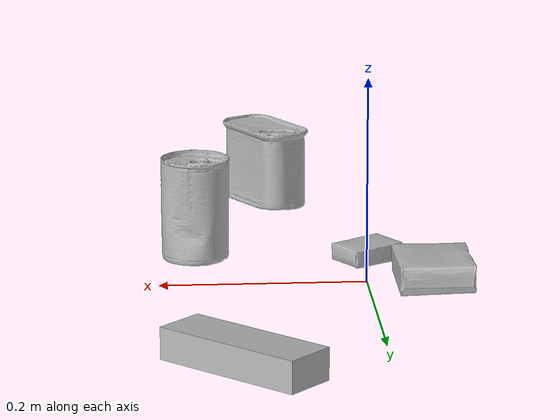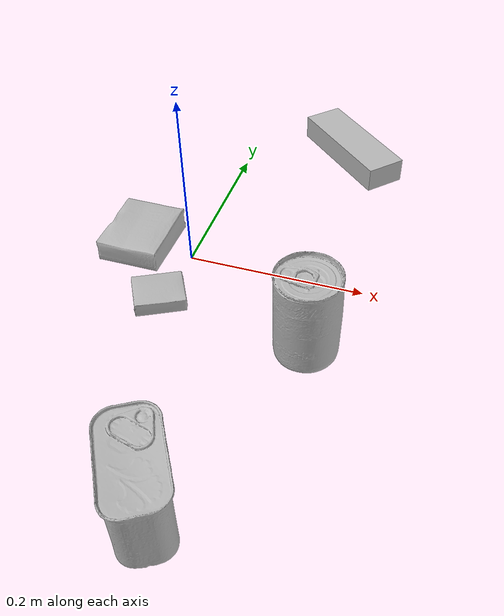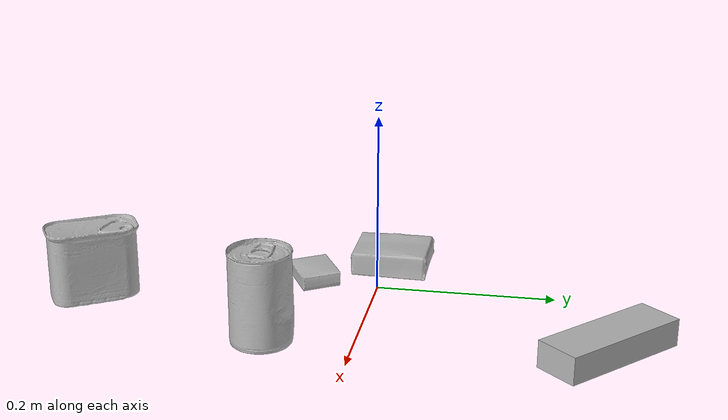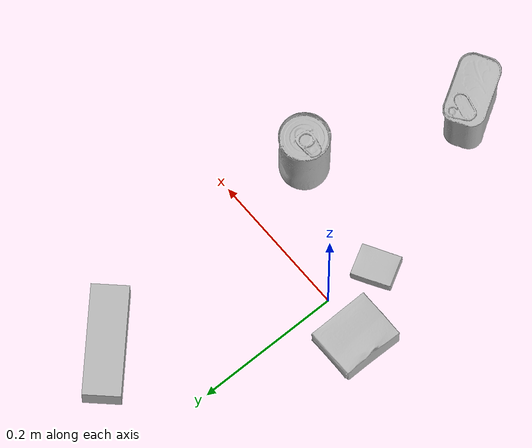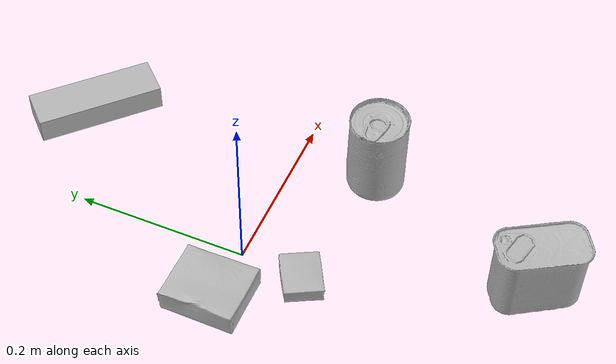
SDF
<sdf version="1.4">
  <world name="default">
    <light name="light1" type="point">
      <pose>0 0 1 0 0 0</pose>
      <diffuse>3 3 3 1</diffuse>
      <specular>3 3 3 1</specular>
    </light>
    <light name="light2" type="point">
      <pose>0 0.5 2 0 0 0</pose>
      <diffuse>1 1 1 1</diffuse>
      <specular>1 1 1 1</specular>
    </light>
    <light name="light3" type="point">
      <pose>0 0.5 2 0 0 0</pose>
      <diffuse>3 3 3 1</diffuse>
      <specular>3 3 3 1</specular>
    </light>
    <scene>
      <ambient>0.7 0.7 0.7</ambient>
    </scene>
    <model name="box1">
      <link name="link_box1">
        <collision name="default">
          <geometry>
            <mesh>
              <uri>model://pudding_box/collision_meshes/collision.obj</uri>
              <scale>0.5 0.5 0.5</scale>
            </mesh>
          </geometry>
          <surface>
            <friction>
              <ode>
                <mu>0.5</mu>
                <mu2>0.5</mu2>
              </ode>
            </friction>
          <contact>
        <ode>
            <max_vel>0</max_vel>
            <min_depth>0.0001</min_depth>
            <kp>1e8</kp>
        </ode>
    </contact></surface>
        </collision>
        <visual name="default">
          <geometry>
            <mesh>
              <uri>model://pudding_box/visual_meshes/visual.dae</uri>
              <scale>0.5 0.5 0.5</scale>
            </mesh>
          </geometry>
        </visual>
        <inertial>
          <mass>0.040720973163843155</mass>
          <pose>0.00024474109522998333 0.0004033942532259971 -0.0002594413817860186 0.005213101818388509 -0.006603799159636292 0.020079815843731863</pose>
          <inertia>
            <ixx>1.1508242e-05</ixx>
            <iyy>7.742825e-06</iyy>
            <izz>1.6994923e-05</izz>
            <ixy>0</ixy>
            <ixz>0</ixz>
            <iyz>0</iyz>
          </inertia>
        </inertial>
      </link>
      <pose>-0.0066093625500798225 -0.07416310161352158 0.009862905368208885 0.02234846317083753 -0.011391722232011929 2.081799851215129</pose>
    </model>
    <model name="box2">
      <link name="link_box2">
        <collision name="default">
          <geometry>
            <mesh>
              <uri>model://jenga/collision_meshes/collision.obj</uri>
              <scale>1.0 1.0 1.0</scale>
            </mesh>
          </geometry>
          <surface>
            <friction>
              <ode>
                <mu>0.5</mu>
                <mu2>0.5</mu2>
              </ode>
            </friction>
          <contact>
        <ode>
            <max_vel>0</max_vel>
            <min_depth>0.0001</min_depth>
            <kp>1e8</kp>
        </ode>
    </contact></surface>
        </collision>
        <visual name="default">
          <geometry>
            <mesh>
              <uri>model://jenga/visual_meshes/visual.dae</uri>
              <scale>1.0 1.0 1.0</scale>
            </mesh>
          </geometry>
        </visual>
        <inertial>
          <mass>0.2260044664144516</mass>
          <pose>-2.502855807051674e-07 -0.00010250010382151231 -4.0923401684267446e-05 0.0 -7.34215461761844e-07 0.0</pose>
          <inertia>
            <ixx>6.254092e-05</ixx>
            <iyy>0.00042377558</iyy>
            <izz>0.00045241645</izz>
            <ixy>0</ixy>
            <ixz>0</ixz>
            <iyz>0</iyz>
          </inertia>
        </inertial>
      </link>
      <pose>0.13086138665676117 0.25724703073501587 0.014999995939433575 -8.84558849355383e-09 2.538560351463252e-09 2.3867802922813737</pose>
    </model>
    <model name="box3">
      <link name="link_box3">
        <collision name="default">
          <geometry>
            <mesh>
              <uri>model://gelatin_box/collision_meshes/collision.obj</uri>
              <scale>1.0 1.0 1.0</scale>
            </mesh>
          </geometry>
          <surface>
            <friction>
              <ode>
                <mu>0.5</mu>
                <mu2>0.5</mu2>
              </ode>
            </friction>
          <contact>
        <ode>
            <max_vel>0</max_vel>
            <min_depth>0.0001</min_depth>
            <kp>1e8</kp>
        </ode>
    </contact></surface>
        </collision>
        <visual name="default">
          <geometry>
            <mesh>
              <uri>model://gelatin_box/visual_meshes/visual.dae</uri>
              <scale>1.0 1.0 1.0</scale>
            </mesh>
          </geometry>
        </visual>
        <inertial>
          <mass>0.21249663829803467</mass>
          <pose>0.000431961816502735 0.00011156871914863586 -0.0003640321083366871 -0.0010503720865678746 -0.004755816824885886 0.016440563196489677</pose>
          <inertia>
            <ixx>0.00015000527</ixx>
            <iyy>0.000107147986</iyy>
            <izz>0.00022834145</izz>
            <ixy>0</ixy>
            <ixz>0</ixz>
            <iyz>0</iyz>
          </inertia>
        </inertial>
      </link>
      <pose>-0.06320434808731079 0.008093616925179958 0.01516831573098898 0.005596949616527097 -0.00730397832162586 3.1343727642816535</pose>
    </model>
    <model name="can1">
      <link name="link_can1">
        <collision name="default">
          <geometry>
            <mesh>
              <uri>model://tomato_soup_can/collision_meshes/collision.obj</uri>
              <scale>1.0 1.0 1.0</scale>
            </mesh>
          </geometry>
          <surface>
            <friction>
              <ode>
                <mu>0.5</mu>
                <mu2>0.5</mu2>
              </ode>
            </friction>
          <contact>
        <ode>
            <max_vel>0</max_vel>
            <min_depth>0.0001</min_depth>
            <kp>1e8</kp>
        </ode>
    </contact></surface>
        </collision>
        <visual name="default">
          <geometry>
            <mesh>
              <uri>model://tomato_soup_can/visual_meshes/visual.dae</uri>
              <scale>1.0 1.0 1.0</scale>
            </mesh>
          </geometry>
        </visual>
        <inertial>
          <mass>0.23179346323013306</mass>
          <pose>0.00012652273289859295 0.00010805525380419567 -0.0017973976209759712 0.00702006934742656 0.00042299045868732465 -0.009902874376192201</pose>
          <inertia>
            <ixx>0.0002541419</ixx>
            <iyy>0.00025267305</iyy>
            <izz>0.00013171937</izz>
            <ixy>0</ixy>
            <ixz>0</ixz>
            <iyz>0</iyz>
          </inertia>
        </inertial>
      </link>
      <pose>0.16136445105075836 -0.09462784975767136 0.05127398669719696 -4.235018989737661e-07 -6.933330459000271e-07 -1.9271856221613795</pose>
    </model>
    <model name="can2">
      <link name="link_can2">
        <collision name="default">
          <geometry>
            <mesh>
              <uri>model://potted_meat_can/collision_meshes/collision.obj</uri>
              <scale>1.0 1.0 1.0</scale>
            </mesh>
          </geometry>
          <surface>
            <friction>
              <ode>
                <mu>0.5</mu>
                <mu2>0.5</mu2>
              </ode>
            </friction>
          <contact>
        <ode>
            <max_vel>0</max_vel>
            <min_depth>0.0001</min_depth>
            <kp>1e8</kp>
        </ode>
    </contact></surface>
        </collision>
        <visual name="default">
          <geometry>
            <mesh>
              <uri>model://potted_meat_can/visual_meshes/visual.dae</uri>
              <scale>1.0 1.0 1.0</scale>
            </mesh>
          </geometry>
        </visual>
        <inertial>
          <mass>0.3195023536682129</mass>
          <pose>0.00022888148669153452 -5.98910846747458e-05 -0.0006367437308654189 -0.028093352727545092 -0.0072326048209280834 0.015406269022640915</pose>
          <inertia>
            <ixx>0.00041100648</ixx>
            <iyy>0.0002497176</iyy>
            <izz>0.00029892896</izz>
            <ixy>0</ixy>
            <ixz>0</ixz>
            <iyz>0</iyz>
          </inertia>
        </inertial>
      </link>
      <pose>0.08072733879089355 -0.30668890476226807 0.04212801158428192 -5.474551114072534e-08 -2.3124575478362746e-07 -2.605498025780525</pose>
    </model>
  <physics type="ode">
      <max_contacts>50</max_contacts>
      <ode>
        <solver>
          <type>quick</type>
          <iters>75</iters>
        </solver>
        <constraints>
          <contact_max_correcting_vel>0</contact_max_correcting_vel>
          <contact_surface_layer>0</contact_surface_layer>
        </constraints>
      </ode>
    </physics></world>
</sdf>
